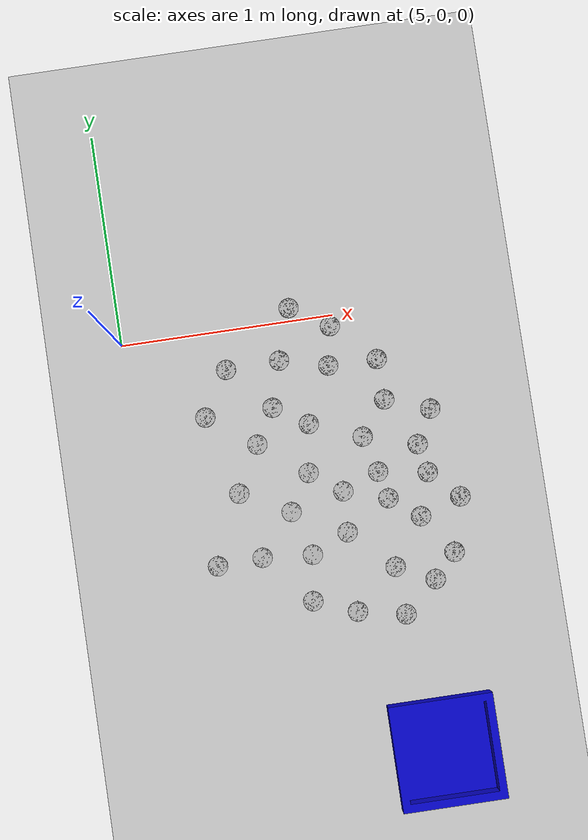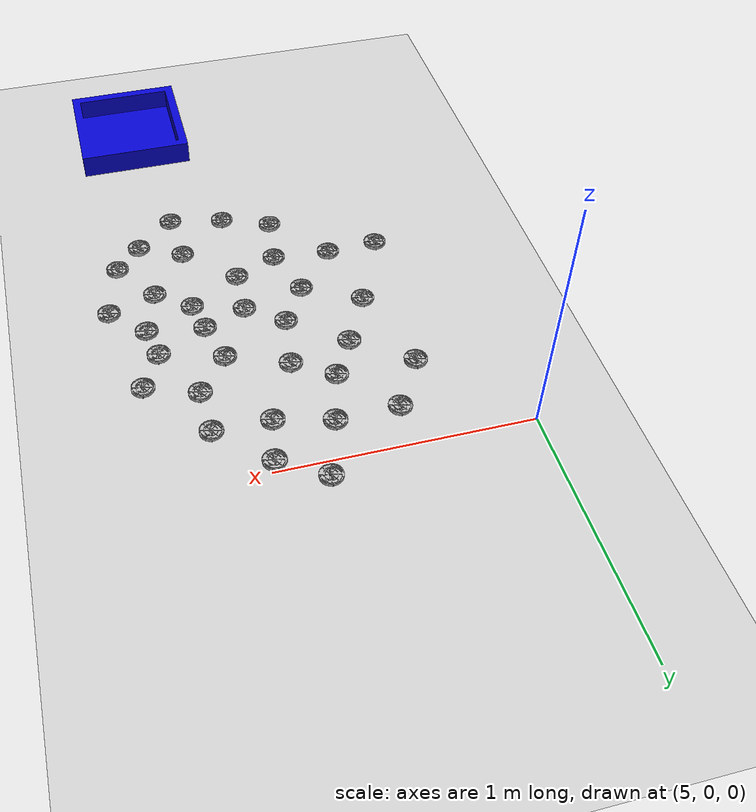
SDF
<sdf version="1.7">
 <world name="default">
  <light name="sun" type="directional">
   <pose>0 0 10 0 -0 0</pose>
   <diffuse>0.8 0.8 0.8 1</diffuse>
   <specular>0.2 0.2 0.2 1</specular>
   <attenuation>
    <range>1000</range>
    <constant>0.9</constant>
    <linear>0.01</linear>
    <quadratic>0.001</quadratic>
   </attenuation>
   <direction>-0.5 0.1 -0.9</direction>
   <spot><inner_angle>0</inner_angle><outer_angle>0</outer_angle><falloff>0</falloff></spot>
  </light>
  <model name="ground_plane">
   <static>1</static>
   <link name="link">
    <collision name="collision">
     <geometry><plane><normal>0 0 1</normal><size>100 100</size></plane></geometry>
     <surface><friction><ode><mu>100</mu><mu2>50</mu2></ode></friction></surface>
    </collision>
    <visual name="visual">
     <cast_shadows>0</cast_shadows>
     <geometry><plane><normal>0 0 1</normal><size>100 100</size></plane></geometry>
     <material>
      <script><uri>file://media/materials/scripts/gazebo.material</uri><name>Gazebo/Grey</name></script>
     </material>
    </visual>
   </link>
  </model>
  <gravity>0 0 -9.8</gravity>
  <magnetic_field>6e-06 2.3e-05 -4.2e-05</magnetic_field>
  <atmosphere type="adiabatic"/>
  <physics type="ode">
   <max_step_size>0.003</max_step_size>
   <real_time_factor>1</real_time_factor>
   <real_time_update_rate>1000</real_time_update_rate>
  </physics>
  <scene><ambient>0.4 0.4 0.4 1</ambient><background>0.7 0.7 0.7 1</background><shadows>1</shadows></scene>
  <spherical_coordinates>
   <surface_model>EARTH_WGS84</surface_model>
   <latitude_deg>0</latitude_deg>
   <longitude_deg>0</longitude_deg>
   <elevation>0</elevation>
   <heading_deg>0</heading_deg>
  </spherical_coordinates>
  <model name="HV8">
   <pose>6.05479 -0.58767 3e-06 -0.000164 -2.7e-05 0.00019</pose>
   <static>0</static>
   <link name="HV8">
    <inertial>
     <mass>0.05</mass>
     <inertia><ixx>0.0002</ixx><ixy>0</ixy><ixz>0</ixz><iyy>0.0002</iyy><iyz>0</iyz><izz>0.0002</izz></inertia>
    </inertial>
    <collision name="collishin">
     <geometry><mesh><uri>model://HV8/meshes/HV8_1.stl</uri></mesh></geometry>
    </collision>
    <visual name="visual"><geometry><mesh><uri>model://HV8/meshes/HV8_1.stl</uri></mesh></geometry></visual>
   </link>
  </model>
  <model name="HV8_0">
   <pose>6.38653 -0.503686 3e-06 -0.000164 -2.7e-05 0.000185</pose>
   <static>0</static>
   <link name="HV8">
    <inertial>
     <mass>0.05</mass>
     <inertia><ixx>0.0002</ixx><ixy>0</ixy><ixz>0</ixz><iyy>0.0002</iyy><iyz>0</iyz><izz>0.0002</izz></inertia>
    </inertial>
    <collision name="collishin">
     <geometry><mesh><uri>model://HV8/meshes/HV8_1.stl</uri></mesh></geometry>
    </collision>
    <visual name="visual"><geometry><mesh><uri>model://HV8/meshes/HV8_1.stl</uri></mesh></geometry></visual>
   </link>
  </model>
  <model name="HV8_1">
   <pose>6.30296 -0.659616 3e-06 -0.000164 -2.7e-05 0.000132</pose>
   <static>0</static>
   <link name="HV8">
    <inertial>
     <mass>0.05</mass>
     <inertia><ixx>0.0002</ixx><ixy>0</ixy><ixz>0</ixz><iyy>0.0002</iyy><iyz>0</iyz><izz>0.0002</izz></inertia>
    </inertial>
    <collision name="collishin">
     <geometry><mesh><uri>model://HV8/meshes/HV8_1.stl</uri></mesh></geometry>
    </collision>
    <visual name="visual"><geometry><mesh><uri>model://HV8/meshes/HV8_1.stl</uri></mesh></geometry></visual>
   </link>
  </model>
  <model name="HV8_2">
   <pose>6.26758 -0.994128 -1.8e-05 0.000274 0.000329 0.000136</pose>
   <static>0</static>
   <link name="HV8">
    <inertial>
     <mass>0.05</mass>
     <inertia><ixx>0.0002</ixx><ixy>0</ixy><ixz>0</ixz><iyy>0.0002</iyy><iyz>0</iyz><izz>0.0002</izz></inertia>
    </inertial>
    <collision name="collishin">
     <geometry><mesh><uri>model://HV8/meshes/HV8_1.stl</uri></mesh></geometry>
    </collision>
    <visual name="visual"><geometry><mesh><uri>model://HV8/meshes/HV8_1.stl</uri></mesh></geometry></visual>
   </link>
  </model>
  <model name="HV8_3">
   <pose>6.13015 -0.889386 -3e-06 -0.000159 7.4e-05 0.000135</pose>
   <static>0</static>
   <link name="HV8">
    <inertial>
     <mass>0.05</mass>
     <inertia><ixx>0.0002</ixx><ixy>0</ixy><ixz>0</ixz><iyy>0.0002</iyy><iyz>0</iyz><izz>0.0002</izz></inertia>
    </inertial>
    <collision name="collishin">
     <geometry><mesh><uri>model://HV8/meshes/HV8_1.stl</uri></mesh></geometry>
    </collision>
    <visual name="visual"><geometry><mesh><uri>model://HV8/meshes/HV8_1.stl</uri></mesh></geometry></visual>
   </link>
  </model>
  <model name="HV8_4">
   <pose>6.10129 -0.759697 6e-06 1.5e-05 0.000174 0.000284</pose>
   <static>0</static>
   <link name="HV8">
    <inertial>
     <mass>0.05</mass>
     <inertia><ixx>0.0002</ixx><ixy>0</ixy><ixz>0</ixz><iyy>0.0002</iyy><iyz>0</iyz><izz>0.0002</izz></inertia>
    </inertial>
    <collision name="collishin">
     <geometry><mesh><uri>model://HV8/meshes/HV8_1.stl</uri></mesh></geometry>
    </collision>
    <visual name="visual"><geometry><mesh><uri>model://HV8/meshes/HV8_1.stl</uri></mesh></geometry></visual>
   </link>
  </model>
  <model name="HV8_5">
   <pose>5.92701 -0.826768 -3e-06 -0.000159 7.4e-05 0.000135</pose>
   <static>0</static>
   <link name="HV8">
    <inertial>
     <mass>0.05</mass>
     <inertia><ixx>0.0002</ixx><ixy>0</ixy><ixz>0</ixz><iyy>0.0002</iyy><iyz>0</iyz><izz>0.0002</izz></inertia>
    </inertial>
    <collision name="collishin">
     <geometry><mesh><uri>model://HV8/meshes/HV8_1.stl</uri></mesh></geometry>
    </collision>
    <visual name="visual"><geometry><mesh><uri>model://HV8/meshes/HV8_1.stl</uri></mesh></geometry></visual>
   </link>
  </model>
  <model name="HV8_6">
   <pose>5.91883 -1.01788 -1.1e-05 -5.9e-05 0.000279 0.000283</pose>
   <static>0</static>
   <link name="HV8">
    <inertial>
     <mass>0.05</mass>
     <inertia><ixx>0.0002</ixx><ixy>0</ixy><ixz>0</ixz><iyy>0.0002</iyy><iyz>0</iyz><izz>0.0002</izz></inertia>
    </inertial>
    <collision name="collishin">
     <geometry><mesh><uri>model://HV8/meshes/HV8_1.stl</uri></mesh></geometry>
    </collision>
    <visual name="visual"><geometry><mesh><uri>model://HV8/meshes/HV8_1.stl</uri></mesh></geometry></visual>
   </link>
  </model>
  <model name="HV8_7">
   <pose>5.77998 -0.718308 3e-06 -0.000164 -2.7e-05 0.000133</pose>
   <static>0</static>
   <link name="HV8">
    <inertial>
     <mass>0.05</mass>
     <inertia><ixx>0.0002</ixx><ixy>0</ixy><ixz>0</ixz><iyy>0.0002</iyy><iyz>0</iyz><izz>0.0002</izz></inertia>
    </inertial>
    <collision name="collishin">
     <geometry><mesh><uri>model://HV8/meshes/HV8_1.stl</uri></mesh></geometry>
    </collision>
    <visual name="visual"><geometry><mesh><uri>model://HV8/meshes/HV8_1.stl</uri></mesh></geometry></visual>
   </link>
  </model>
  <model name="HV8_8">
   <pose>6.11551 -1.20902 -1.8e-05 0.000274 0.000329 0.000133</pose>
   <static>0</static>
   <link name="HV8">
    <inertial>
     <mass>0.05</mass>
     <inertia><ixx>0.0002</ixx><ixy>0</ixy><ixz>0</ixz><iyy>0.0002</iyy><iyz>0</iyz><izz>0.0002</izz></inertia>
    </inertial>
    <collision name="collishin">
     <geometry><mesh><uri>model://HV8/meshes/HV8_1.stl</uri></mesh></geometry>
    </collision>
    <visual name="visual"><geometry><mesh><uri>model://HV8/meshes/HV8_1.stl</uri></mesh></geometry></visual>
   </link>
  </model>
  <model name="HV8_9">
   <pose>5.74365 -1.09741 -1.8e-05 0.000274 0.000329 0.00013</pose>
   <static>0</static>
   <link name="HV8">
    <inertial>
     <mass>0.05</mass>
     <inertia><ixx>0.0002</ixx><ixy>0</ixy><ixz>0</ixz><iyy>0.0002</iyy><iyz>0</iyz><izz>0.0002</izz></inertia>
    </inertial>
    <collision name="collishin">
     <geometry><mesh><uri>model://HV8/meshes/HV8_1.stl</uri></mesh></geometry>
    </collision>
    <visual name="visual"><geometry><mesh><uri>model://HV8/meshes/HV8_1.stl</uri></mesh></geometry></visual>
   </link>
  </model>
  <model name="HV8_10">
   <pose>5.67501 -0.886759 -3e-06 -0.000159 7.4e-05 0.000133</pose>
   <static>0</static>
   <link name="HV8">
    <inertial>
     <mass>0.05</mass>
     <inertia><ixx>0.0002</ixx><ixy>0</ixy><ixz>0</ixz><iyy>0.0002</iyy><iyz>0</iyz><izz>0.0002</izz></inertia>
    </inertial>
    <collision name="collishin">
     <geometry><mesh><uri>model://HV8/meshes/HV8_1.stl</uri></mesh></geometry>
    </collision>
    <visual name="visual"><geometry><mesh><uri>model://HV8/meshes/HV8_1.stl</uri></mesh></geometry></visual>
   </link>
  </model>
  <model name="HV8_11">
   <pose>5.91166 -1.3878 -1.8e-05 0.000274 0.000329 0.000132</pose>
   <static>0</static>
   <link name="HV8">
    <inertial>
     <mass>0.05</mass>
     <inertia><ixx>0.0002</ixx><ixy>0</ixy><ixz>0</ixz><iyy>0.0002</iyy><iyz>0</iyz><izz>0.0002</izz></inertia>
    </inertial>
    <collision name="collishin">
     <geometry><mesh><uri>model://HV8/meshes/HV8_1.stl</uri></mesh></geometry>
    </collision>
    <visual name="visual"><geometry><mesh><uri>model://HV8/meshes/HV8_1.stl</uri></mesh></geometry></visual>
   </link>
  </model>
  <model name="HV8_12">
   <pose>5.94486 -0.233966 3e-06 -0.000164 -2.7e-05 0.000131</pose>
   <static>0</static>
   <link name="HV8">
    <inertial>
     <mass>0.05</mass>
     <inertia><ixx>0.0002</ixx><ixy>0</ixy><ixz>0</ixz><iyy>0.0002</iyy><iyz>0</iyz><izz>0.0002</izz></inertia>
    </inertial>
    <collision name="collishin">
     <geometry><mesh><uri>model://HV8/meshes/HV8_1.stl</uri></mesh></geometry>
    </collision>
    <visual name="visual"><geometry><mesh><uri>model://HV8/meshes/HV8_1.stl</uri></mesh></geometry></visual>
   </link>
  </model>
  <model name="HV8_13">
   <pose>5.81436 -0.49236 3e-06 -0.000164 -2.7e-05 0.000129</pose>
   <static>0</static>
   <link name="HV8">
    <inertial>
     <mass>0.05</mass>
     <inertia><ixx>0.0002</ixx><ixy>0</ixy><ixz>0</ixz><iyy>0.0002</iyy><iyz>0</iyz><izz>0.0002</izz></inertia>
    </inertial>
    <collision name="collishin">
     <geometry><mesh><uri>model://HV8/meshes/HV8_1.stl</uri></mesh></geometry>
    </collision>
    <visual name="visual"><geometry><mesh><uri>model://HV8/meshes/HV8_1.stl</uri></mesh></geometry></visual>
   </link>
  </model>
  <model name="HV8_14">
   <pose>6.32989 -0.79555 3e-06 -0.000164 -2.7e-05 0.000129</pose>
   <static>0</static>
   <link name="HV8">
    <inertial>
     <mass>0.05</mass>
     <inertia><ixx>0.0002</ixx><ixy>0</ixy><ixz>0</ixz><iyy>0.0002</iyy><iyz>0</iyz><izz>0.0002</izz></inertia>
    </inertial>
    <collision name="collishin">
     <geometry><mesh><uri>model://HV8/meshes/HV8_1.stl</uri></mesh></geometry>
    </collision>
    <visual name="visual"><geometry><mesh><uri>model://HV8/meshes/HV8_1.stl</uri></mesh></geometry></visual>
   </link>
  </model>
  <model name="HV8_15">
   <pose>6.46261 -0.929857 3e-06 -0.000164 -2.7e-05 0.00013</pose>
   <static>0</static>
   <link name="HV8">
    <inertial>
     <mass>0.05</mass>
     <inertia><ixx>0.0002</ixx><ixy>0</ixy><ixz>0</ixz><iyy>0.0002</iyy><iyz>0</iyz><izz>0.0002</izz></inertia>
    </inertial>
    <collision name="collishin">
     <geometry><mesh><uri>model://HV8/meshes/HV8_1.stl</uri></mesh></geometry>
    </collision>
    <visual name="visual"><geometry><mesh><uri>model://HV8/meshes/HV8_1.stl</uri></mesh></geometry></visual>
   </link>
  </model>
  <model name="HV8_16">
   <pose>5.56283 -0.552561 3e-06 -0.000164 -2.7e-05 0.000128</pose>
   <static>0</static>
   <link name="HV8">
    <inertial>
     <mass>0.05</mass>
     <inertia><ixx>0.0002</ixx><ixy>0</ixy><ixz>0</ixz><iyy>0.0002</iyy><iyz>0</iyz><izz>0.0002</izz></inertia>
    </inertial>
    <collision name="collishin">
     <geometry><mesh><uri>model://HV8/meshes/HV8_1.stl</uri></mesh></geometry>
    </collision>
    <visual name="visual"><geometry><mesh><uri>model://HV8/meshes/HV8_1.stl</uri></mesh></geometry></visual>
   </link>
  </model>
  <model name="HV8_17">
   <pose>5.72075 -0.177406 3e-06 1.3e-05 8.8e-05 0.000277</pose>
   <static>0</static>
   <link name="HV8">
    <inertial>
     <mass>0.05</mass>
     <inertia><ixx>0.0002</ixx><ixy>0</ixy><ixz>0</ixz><iyy>0.0002</iyy><iyz>0</iyz><izz>0.0002</izz></inertia>
    </inertial>
    <collision name="collishin">
     <geometry><mesh><uri>model://HV8/meshes/HV8_1.stl</uri></mesh></geometry>
    </collision>
    <visual name="visual"><geometry><mesh><uri>model://HV8/meshes/HV8_1.stl</uri></mesh></geometry></visual>
   </link>
  </model>
  <model name="HV8_18">
   <pose>6.18021 -0.429695 -1.8e-05 0.000274 0.000329 0.000127</pose>
   <static>0</static>
   <link name="HV8">
    <inertial>
     <mass>0.05</mass>
     <inertia><ixx>0.0002</ixx><ixy>0</ixy><ixz>0</ixz><iyy>0.0002</iyy><iyz>0</iyz><izz>0.0002</izz></inertia>
    </inertial>
    <collision name="collishin">
     <geometry><mesh><uri>model://HV8/meshes/HV8_1.stl</uri></mesh></geometry>
    </collision>
    <visual name="visual"><geometry><mesh><uri>model://HV8/meshes/HV8_1.stl</uri></mesh></geometry></visual>
   </link>
  </model>
  <model name="HV8_19">
   <pose>6.17413 -0.236766 3e-06 -0.000164 -2.7e-05 0.000128</pose>
   <static>0</static>
   <link name="HV8">
    <inertial>
     <mass>0.05</mass>
     <inertia><ixx>0.0002</ixx><ixy>0</ixy><ixz>0</ixz><iyy>0.0002</iyy><iyz>0</iyz><izz>0.0002</izz></inertia>
    </inertial>
    <collision name="collishin">
     <geometry><mesh><uri>model://HV8/meshes/HV8_1.stl</uri></mesh></geometry>
    </collision>
    <visual name="visual"><geometry><mesh><uri>model://HV8/meshes/HV8_1.stl</uri></mesh></geometry></visual>
   </link>
  </model>
  <model name="HV8_20">
   <pose>5.97991 -0.051407 3e-06 -0.000164 -2.7e-05 0.000129</pose>
   <static>0</static>
   <link name="HV8">
    <inertial>
     <mass>0.05</mass>
     <inertia><ixx>0.0002</ixx><ixy>0</ixy><ixz>0</ixz><iyy>0.0002</iyy><iyz>0</iyz><izz>0.0002</izz></inertia>
    </inertial>
    <collision name="collishin">
     <geometry><mesh><uri>model://HV8/meshes/HV8_1.stl</uri></mesh></geometry>
    </collision>
    <visual name="visual"><geometry><mesh><uri>model://HV8/meshes/HV8_1.stl</uri></mesh></geometry></visual>
   </link>
  </model>
  <model name="HV8_21">
   <pose>5.80057 0.061445 3e-06 -0.000164 -2.7e-05 0.000127</pose>
   <static>0</static>
   <link name="HV8">
    <inertial>
     <mass>0.05</mass>
     <inertia><ixx>0.0002</ixx><ixy>0</ixy><ixz>0</ixz><iyy>0.0002</iyy><iyz>0</iyz><izz>0.0002</izz></inertia>
    </inertial>
    <collision name="collishin">
     <geometry><mesh><uri>model://HV8/meshes/HV8_1.stl</uri></mesh></geometry>
    </collision>
    <visual name="visual"><geometry><mesh><uri>model://HV8/meshes/HV8_1.stl</uri></mesh></geometry></visual>
   </link>
  </model>
  <model name="HV8_22">
   <pose>5.65794 -0.392172 -1e-05 -0.000249 0.000381 0.000276</pose>
   <static>0</static>
   <link name="HV8">
    <inertial>
     <mass>0.05</mass>
     <inertia><ixx>0.0002</ixx><ixy>0</ixy><ixz>0</ixz><iyy>0.0002</iyy><iyz>0</iyz><izz>0.0002</izz></inertia>
    </inertial>
    <collision name="collishin">
     <geometry><mesh><uri>model://HV8/meshes/HV8_1.stl</uri></mesh></geometry>
    </collision>
    <visual name="visual"><geometry><mesh><uri>model://HV8/meshes/HV8_1.stl</uri></mesh></geometry></visual>
   </link>
  </model>
  <model name="HV8_23">
   <pose>5.46867 -0.183916 6e-06 1.5e-05 0.000174 0.000276</pose>
   <static>0</static>
   <link name="HV8">
    <inertial>
     <mass>0.05</mass>
     <inertia><ixx>0.0002</ixx><ixy>0</ixy><ixz>0</ixz><iyy>0.0002</iyy><iyz>0</iyz><izz>0.0002</izz></inertia>
    </inertial>
    <collision name="collishin">
     <geometry><mesh><uri>model://HV8/meshes/HV8_1.stl</uri></mesh></geometry>
    </collision>
    <visual name="visual"><geometry><mesh><uri>model://HV8/meshes/HV8_1.stl</uri></mesh></geometry></visual>
   </link>
  </model>
  <model name="HV8_24">
   <pose>5.34119 -0.391995 -1.7e-05 -0.000115 -0.000429 0.000276</pose>
   <static>0</static>
   <link name="HV8">
    <inertial>
     <mass>0.05</mass>
     <inertia><ixx>0.0002</ixx><ixy>0</ixy><ixz>0</ixz><iyy>0.0002</iyy><iyz>0</iyz><izz>0.0002</izz></inertia>
    </inertial>
    <collision name="collishin">
     <geometry><mesh><uri>model://HV8/meshes/HV8_1.stl</uri></mesh></geometry>
    </collision>
    <visual name="visual"><geometry><mesh><uri>model://HV8/meshes/HV8_1.stl</uri></mesh></geometry></visual>
   </link>
  </model>
  <model name="HV8_25">
   <pose>6.39642 -1.1804 3e-06 -0.000164 -2.7e-05 0.000125</pose>
   <static>0</static>
   <link name="HV8">
    <inertial>
     <mass>0.05</mass>
     <inertia><ixx>0.0002</ixx><ixy>0</ixy><ixz>0</ixz><iyy>0.0002</iyy><iyz>0</iyz><izz>0.0002</izz></inertia>
    </inertial>
    <collision name="collishin">
     <geometry><mesh><uri>model://HV8/meshes/HV8_1.stl</uri></mesh></geometry>
    </collision>
    <visual name="visual"><geometry><mesh><uri>model://HV8/meshes/HV8_1.stl</uri></mesh></geometry></visual>
   </link>
  </model>
  <model name="HV8_26">
   <pose>6.29055 -1.29199 -3e-06 -0.000159 7.4e-05 0.000127</pose>
   <static>0</static>
   <link name="HV8">
    <inertial>
     <mass>0.05</mass>
     <inertia><ixx>0.0002</ixx><ixy>0</ixy><ixz>0</ixz><iyy>0.0002</iyy><iyz>0</iyz><izz>0.0002</izz></inertia>
    </inertial>
    <collision name="collishin">
     <geometry><mesh><uri>model://HV8/meshes/HV8_1.stl</uri></mesh></geometry>
    </collision>
    <visual name="visual"><geometry><mesh><uri>model://HV8/meshes/HV8_1.stl</uri></mesh></geometry></visual>
   </link>
  </model>
  <model name="HV8_27">
   <pose>6.1318 -1.43253 -1.8e-05 0.000274 0.000329 0.000125</pose>
   <static>0</static>
   <link name="HV8">
    <inertial>
     <mass>0.05</mass>
     <inertia><ixx>0.0002</ixx><ixy>0</ixy><ixz>0</ixz><iyy>0.0002</iyy><iyz>0</iyz><izz>0.0002</izz></inertia>
    </inertial>
    <collision name="collishin">
     <geometry><mesh><uri>model://HV8/meshes/HV8_1.stl</uri></mesh></geometry>
    </collision>
    <visual name="visual"><geometry><mesh><uri>model://HV8/meshes/HV8_1.stl</uri></mesh></geometry></visual>
   </link>
  </model>
  <model name="HV8_28">
   <pose>5.71418 -1.31007 -3e-06 -0.000159 7.4e-05 0.000126</pose>
   <static>0</static>
   <link name="HV8">
    <inertial>
     <mass>0.05</mass>
     <inertia><ixx>0.0002</ixx><ixy>0</ixy><ixz>0</ixz><iyy>0.0002</iyy><iyz>0</iyz><izz>0.0002</izz></inertia>
    </inertial>
    <collision name="collishin">
     <geometry><mesh><uri>model://HV8/meshes/HV8_1.stl</uri></mesh></geometry>
    </collision>
    <visual name="visual"><geometry><mesh><uri>model://HV8/meshes/HV8_1.stl</uri></mesh></geometry></visual>
   </link>
  </model>
  <model name="HV8_29">
   <pose>5.30029 -1.08617 -1.8e-05 0.000274 0.000329 0.000125</pose>
   <static>0</static>
   <link name="HV8">
    <inertial>
     <mass>0.05</mass>
     <inertia><ixx>0.0002</ixx><ixy>0</ixy><ixz>0</ixz><iyy>0.0002</iyy><iyz>0</iyz><izz>0.0002</izz></inertia>
    </inertial>
    <collision name="collishin">
     <geometry><mesh><uri>model://HV8/meshes/HV8_1.stl</uri></mesh></geometry>
    </collision>
    <visual name="visual"><geometry><mesh><uri>model://HV8/meshes/HV8_1.stl</uri></mesh></geometry></visual>
   </link>
  </model>
  <model name="HV8_30">
   <pose>5.44644 -0.767029 -1e-05 -0.000249 0.000381 0.000273</pose>
   <static>0</static>
   <link name="HV8">
    <inertial>
     <mass>0.05</mass>
     <inertia><ixx>0.0002</ixx><ixy>0</ixy><ixz>0</ixz><iyy>0.0002</iyy><iyz>0</iyz><izz>0.0002</izz></inertia>
    </inertial>
    <collision name="collishin">
     <geometry><mesh><uri>model://HV8/meshes/HV8_1.stl</uri></mesh></geometry>
    </collision>
    <visual name="visual"><geometry><mesh><uri>model://HV8/meshes/HV8_1.stl</uri></mesh></geometry></visual>
   </link>
  </model>
  <model name="HV8_31">
   <pose>5.51098 -1.07726 -3e-06 -0.000159 7.4e-05 0.000125</pose>
   <static>0</static>
   <link name="HV8">
    <inertial>
     <mass>0.05</mass>
     <inertia><ixx>0.0002</ixx><ixy>0</ixy><ixz>0</ixz><iyy>0.0002</iyy><iyz>0</iyz><izz>0.0002</izz></inertia>
    </inertial>
    <collision name="collishin">
     <geometry><mesh><uri>model://HV8/meshes/HV8_1.stl</uri></mesh></geometry>
    </collision>
    <visual name="visual"><geometry><mesh><uri>model://HV8/meshes/HV8_1.stl</uri></mesh></geometry></visual>
   </link>
  </model>
  <model name="object_box">
   <pose>6.21676 -2.06935 0 0 -0 0</pose>
   <static>1</static>
   <link name="object_box">
    <inertial>
     <mass>0.2</mass>
     <inertia><ixx>0.0005</ixx><ixy>0</ixy><ixz>0</ixz><iyy>0.0005</iyy><iyz>0</iyz><izz>0.0005</izz></inertia>
    </inertial>
    <collision name="collision">
     <geometry><mesh><uri>model://object_box/meshed/object_box_kai_kai.dae</uri></mesh></geometry>
    </collision>
    <visual name="visual">
     <geometry><mesh><uri>model://object_box/meshed/object_box_kai_kai.dae</uri></mesh></geometry>
    </visual>
   </link>
  </model>
 </world>
</sdf>
